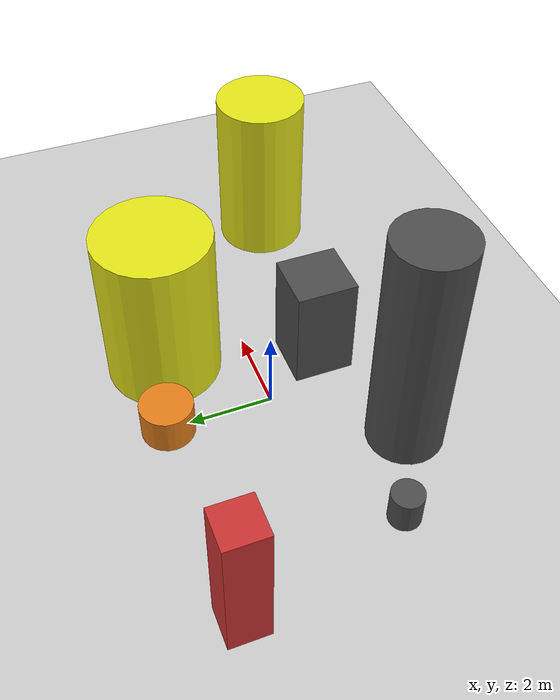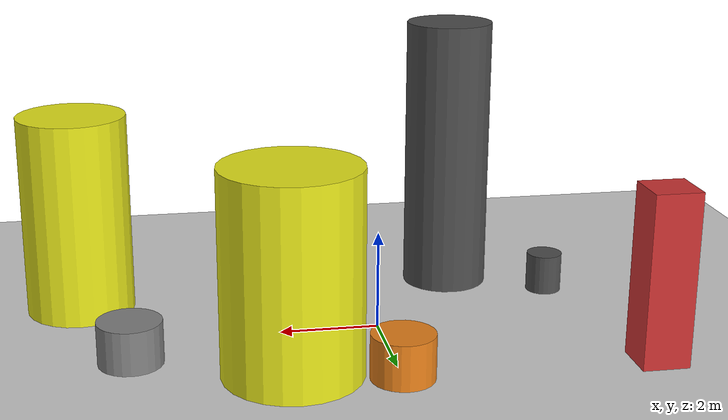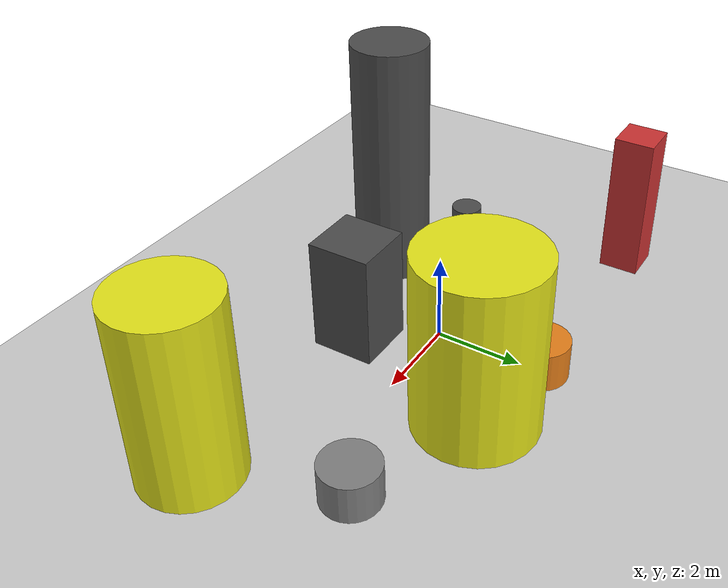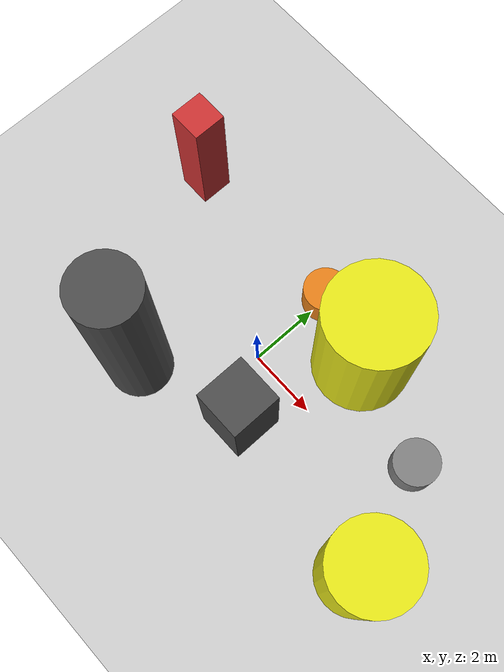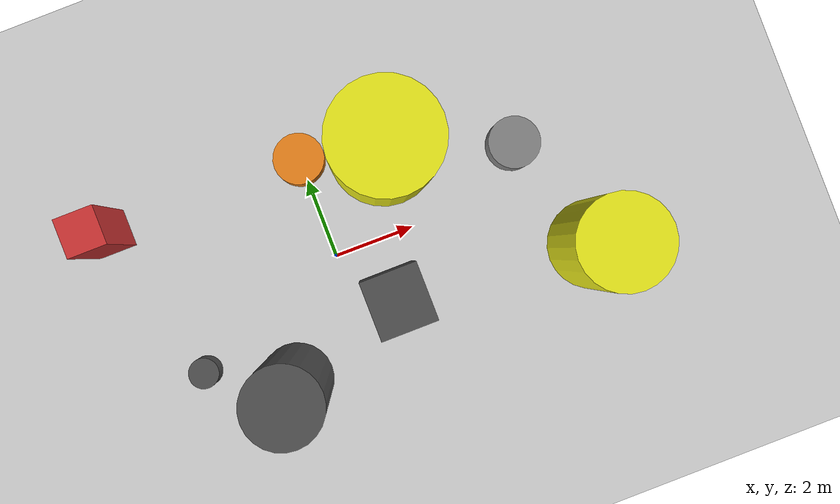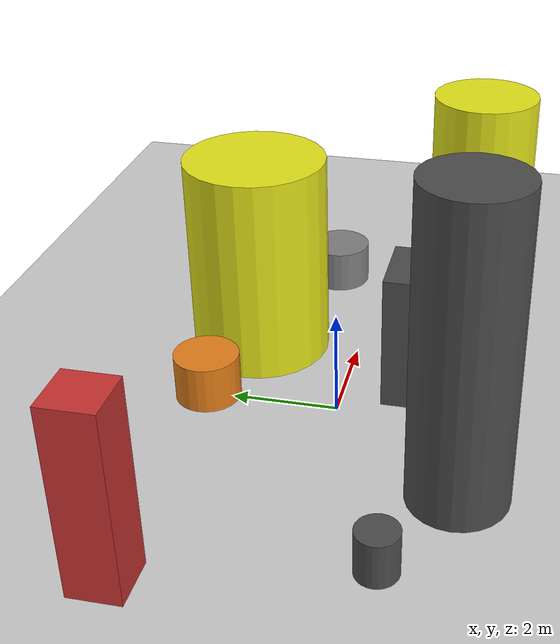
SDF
<?xml version='1.0'?>
<sdf version='1.6'>
  <world name='routeA_rl_v1__support_expansion__rl_val__mixed_3d_low_density_route__000053'>
    <!-- Sun light -->
    <light name='sun' type='directional'>
      <cast_shadows>1</cast_shadows>
      <pose>0 0 10 0 0 0</pose>
      <diffuse>0.8 0.8 0.8 1</diffuse>
      <specular>0.2 0.2 0.2 1</specular>
      <attenuation>
        <range>1000</range>
        <constant>0.9</constant>
        <linear>0.01</linear>
        <quadratic>0.001</quadratic>
      </attenuation>
      <direction>-0.5 0.1 -0.9</direction>
    </light>

    <!-- Ground plane -->
    <model name='ground_plane'>
      <static>1</static>
      <link name='link'>
        <collision name='collision'>
          <geometry>
            <plane>
              <normal>0 0 1</normal>
              <size>100 100</size>
            </plane>
          </geometry>
          <surface>
            <contact>
              <collide_bitmask>65535</collide_bitmask>
              <ode/>
            </contact>
            <friction>
              <ode>
                <mu>100</mu>
                <mu2>50</mu2>
              </ode>
              <torsional><ode/></torsional>
            </friction>
            <bounce/>
          </surface>
          <max_contacts>10</max_contacts>
        </collision>
        <visual name='visual'>
          <cast_shadows>0</cast_shadows>
          <geometry>
            <plane>
              <normal>0 0 1</normal>
              <size>100 100</size>
            </plane>
          </geometry>
          <material>
            <script>
              <uri>file://media/materials/scripts/gazebo.material</uri>
              <n>Gazebo/Grey</n>
            </script>
          </material>
        </visual>
      </link>
    </model>

    <!-- Environment -->
    <magnetic_field>6e-06 2.3e-05 -4.2e-05</magnetic_field>
    <atmosphere type='adiabatic'/>
    <physics name='default_physics' default='0' type='ode'>
      <gravity>0 0 -9.8</gravity>
      <max_step_size>0.004</max_step_size>
      <real_time_factor>1</real_time_factor>
      <real_time_update_rate>250</real_time_update_rate>
    </physics>
    <scene>
      <ambient>0.4 0.4 0.4 1</ambient>
      <background>0.7 0.7 0.7 1</background>
      <shadows>1</shadows>
    </scene>
    <wind/>
    <spherical_coordinates>
      <surface_model>EARTH_WGS84</surface_model>
      <latitude_deg>0</latitude_deg>
      <longitude_deg>0</longitude_deg>
      <elevation>0</elevation>
      <heading_deg>0</heading_deg>
    </spherical_coordinates>

    <!-- ============ OBSTACLES (8) ============ -->
    <model name='low_obs_0'>
      <static>1</static>
      <link name='link'>
        <visual name='visual'>
          <geometry>
            <cylinder>
              <radius>0.3747</radius>
              <length>0.8369</length>
            </cylinder>
          </geometry>
          <material>
            <script>
              <n>Gazebo/DarkGrey</n>
              <uri>file://media/materials/scripts/gazebo.material</uri>
            </script>
            <ambient>0.3 0.3 0.3 1</ambient>
          </material>
        </visual>
        <collision name='collision'>
          <geometry>
            <cylinder>
              <radius>0.3747</radius>
              <length>0.8369</length>
            </cylinder>
          </geometry>
          <max_contacts>10</max_contacts>
          <surface>
            <contact><ode/></contact>
            <bounce/>
            <friction>
              <ode><mu>1</mu><mu2>1</mu2></ode>
              <torsional><ode/></torsional>
            </friction>
          </surface>
        </collision>
      </link>
      <pose>-4.0000 -1.5000 0.4184 0 0 0.0000</pose>
    </model>

    <model name='low_obs_1'>
      <static>1</static>
      <link name='link'>
        <visual name='visual'>
          <geometry>
            <cylinder>
              <radius>0.6250</radius>
              <length>0.9062</length>
            </cylinder>
          </geometry>
          <material>
            <script>
              <n>Gazebo/Orange</n>
              <uri>file://media/materials/scripts/gazebo.material</uri>
            </script>
            <ambient>0.9 0.5 0.1 1</ambient>
          </material>
        </visual>
        <collision name='collision'>
          <geometry>
            <cylinder>
              <radius>0.6250</radius>
              <length>0.9062</length>
            </cylinder>
          </geometry>
          <max_contacts>10</max_contacts>
          <surface>
            <contact><ode/></contact>
            <bounce/>
            <friction>
              <ode><mu>1</mu><mu2>1</mu2></ode>
              <torsional><ode/></torsional>
            </friction>
          </surface>
        </collision>
      </link>
      <pose>0.0000 2.5000 0.4531 0 0 0.0000</pose>
    </model>

    <model name='low_obs_2'>
      <static>1</static>
      <link name='link'>
        <visual name='visual'>
          <geometry>
            <cylinder>
              <radius>0.6376</radius>
              <length>0.8686</length>
            </cylinder>
          </geometry>
          <material>
            <script>
              <n>Gazebo/Grey</n>
              <uri>file://media/materials/scripts/gazebo.material</uri>
            </script>
            <ambient>0.5 0.5 0.5 1</ambient>
          </material>
        </visual>
        <collision name='collision'>
          <geometry>
            <cylinder>
              <radius>0.6376</radius>
              <length>0.8686</length>
            </cylinder>
          </geometry>
          <max_contacts>10</max_contacts>
          <surface>
            <contact><ode/></contact>
            <bounce/>
            <friction>
              <ode><mu>1</mu><mu2>1</mu2></ode>
              <torsional><ode/></torsional>
            </friction>
          </surface>
        </collision>
      </link>
      <pose>5.0000 1.0000 0.4343 0 0 0.0000</pose>
    </model>

    <model name='tall_obs_0'>
      <static>1</static>
      <link name='link'>
        <visual name='visual'>
          <geometry>
            <cylinder>
              <radius>0.9032</radius>
              <length>5.8039</length>
            </cylinder>
          </geometry>
          <material>
            <script>
              <n>Gazebo/DarkGrey</n>
              <uri>file://media/materials/scripts/gazebo.material</uri>
            </script>
            <ambient>0.3 0.3 0.3 1</ambient>
          </material>
        </visual>
        <collision name='collision'>
          <geometry>
            <cylinder>
              <radius>0.9032</radius>
              <length>5.8039</length>
            </cylinder>
          </geometry>
          <max_contacts>10</max_contacts>
          <surface>
            <contact><ode/></contact>
            <bounce/>
            <friction>
              <ode><mu>1</mu><mu2>1</mu2></ode>
              <torsional><ode/></torsional>
            </friction>
          </surface>
        </collision>
      </link>
      <pose>-2.0000 -2.5000 2.9020 0 0 0.0000</pose>
    </model>

    <model name='tall_obs_1'>
      <static>1</static>
      <link name='link'>
        <visual name='visual'>
          <geometry>
            <cylinder>
              <radius>1.3697</radius>
              <length>4.0679</length>
            </cylinder>
          </geometry>
          <material>
            <script>
              <n>Gazebo/Yellow</n>
              <uri>file://media/materials/scripts/gazebo.material</uri>
            </script>
            <ambient>0.9 0.9 0.1 1</ambient>
          </material>
        </visual>
        <collision name='collision'>
          <geometry>
            <cylinder>
              <radius>1.3697</radius>
              <length>4.0679</length>
            </cylinder>
          </geometry>
          <max_contacts>10</max_contacts>
          <surface>
            <contact><ode/></contact>
            <bounce/>
            <friction>
              <ode><mu>1</mu><mu2>1</mu2></ode>
              <torsional><ode/></torsional>
            </friction>
          </surface>
        </collision>
      </link>
      <pose>2.0000 2.0000 2.0340 0 0 0.0000</pose>
    </model>

    <model name='tall_obs_2'>
      <static>1</static>
      <link name='link'>
        <visual name='visual'>
          <geometry>
            <cylinder>
              <radius>1.1162</radius>
              <length>4.1884</length>
            </cylinder>
          </geometry>
          <material>
            <script>
              <n>Gazebo/Yellow</n>
              <uri>file://media/materials/scripts/gazebo.material</uri>
            </script>
            <ambient>0.9 0.9 0.1 1</ambient>
          </material>
        </visual>
        <collision name='collision'>
          <geometry>
            <cylinder>
              <radius>1.1162</radius>
              <length>4.1884</length>
            </cylinder>
          </geometry>
          <max_contacts>10</max_contacts>
          <surface>
            <contact><ode/></contact>
            <bounce/>
            <friction>
              <ode><mu>1</mu><mu2>1</mu2></ode>
              <torsional><ode/></torsional>
            </friction>
          </surface>
        </collision>
      </link>
      <pose>6.0000 -2.0000 2.0942 0 0 0.0000</pose>
    </model>

    <model name='med_obs_0'>
      <static>1</static>
      <link name='link'>
        <visual name='visual'>
          <geometry>
            <box>
              <size>0.9365 0.9305 3.4861</size>
            </box>
          </geometry>
          <material>
            <script>
              <n>Gazebo/Red</n>
              <uri>file://media/materials/scripts/gazebo.material</uri>
            </script>
            <ambient>0.8 0.2 0.2 1</ambient>
          </material>
        </visual>
        <collision name='collision'>
          <geometry>
            <box>
              <size>0.9365 0.9305 3.4861</size>
            </box>
          </geometry>
          <max_contacts>10</max_contacts>
          <surface>
            <contact><ode/></contact>
            <bounce/>
            <friction>
              <ode><mu>1</mu><mu2>1</mu2></ode>
              <torsional><ode/></torsional>
            </friction>
          </surface>
        </collision>
      </link>
      <pose>-5.0000 2.5000 1.7430 0 0 0.0000</pose>
    </model>

    <model name='med_obs_1'>
      <static>1</static>
      <link name='link'>
        <visual name='visual'>
          <geometry>
            <box>
              <size>1.3956 1.4409 2.6435</size>
            </box>
          </geometry>
          <material>
            <script>
              <n>Gazebo/DarkGrey</n>
              <uri>file://media/materials/scripts/gazebo.material</uri>
            </script>
            <ambient>0.3 0.3 0.3 1</ambient>
          </material>
        </visual>
        <collision name='collision'>
          <geometry>
            <box>
              <size>1.3956 1.4409 2.6435</size>
            </box>
          </geometry>
          <max_contacts>10</max_contacts>
          <surface>
            <contact><ode/></contact>
            <bounce/>
            <friction>
              <ode><mu>1</mu><mu2>1</mu2></ode>
              <torsional><ode/></torsional>
            </friction>
          </surface>
        </collision>
      </link>
      <pose>1.0000 -1.5000 1.3217 0 0 0.0000</pose>
    </model>

    <!-- GUI camera -->
    <gui fullscreen='0'>
      <camera name='user_camera'>
        <pose>-15 0 18 0 0.85 0.15</pose>
        <view_controller>orbit</view_controller>
        <projection_type>perspective</projection_type>
      </camera>
    </gui>
  </world>
</sdf>
